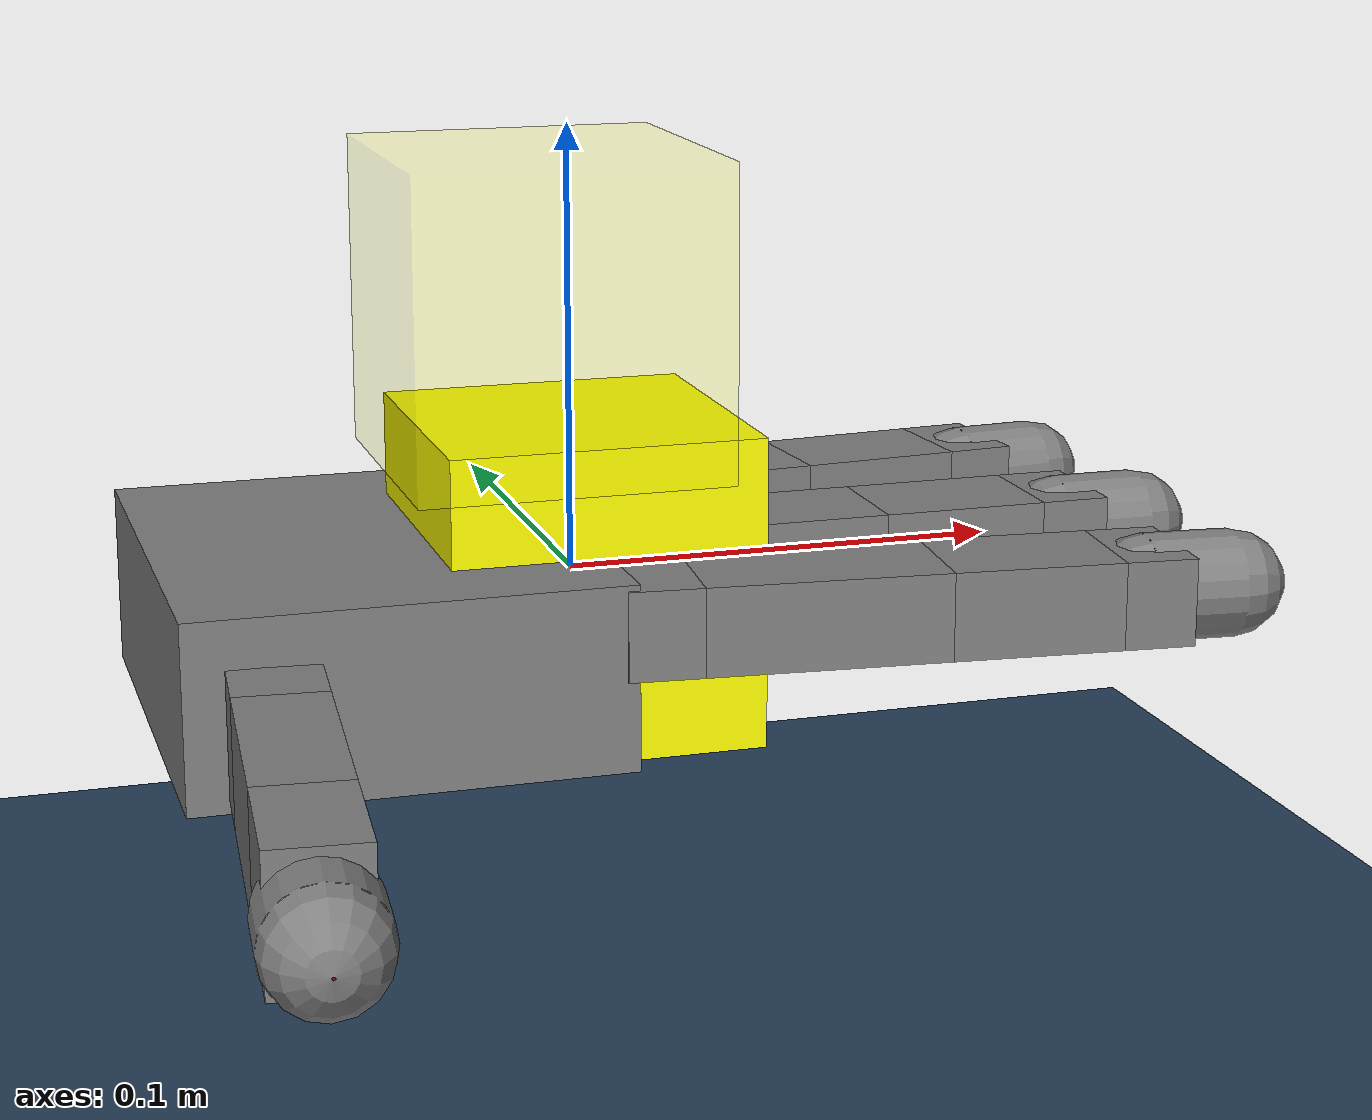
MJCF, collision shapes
<mujoco model="right_allegro_hand scene">
  <include file="allegro_right_hand.xml"/>

  <statistic center="0 0 0" extent="0.3"/>
  <option ccd_iterations="200" timestep="0.001" gravity="4.9 0 -8.49"/>

  <visual>
    <rgba haze="0.15 0.25 0.35 1"/>
    <quality shadowsize="8192"/>
    <global azimuth="130" elevation="-40" offwidth="1280" offheight="960"/>
  </visual>

  <asset>
    <texture name='cube_surface' file="./textures/iris_block.png" gridsize="3 4" gridlayout=".U..LFRB.D.."/>
    <material name="obj_material" texture="cube_surface" specular="5" shininess=".0"/>

    <texture type="2d" name="groundplane" builtin="checker" mark="edge" rgb1="0.2 0.3 0.4" rgb2="0.1 0.2 0.3"
      markrgb="0.8 0.8 0.8" width="300" height="300"/>
    <material name="groundplane" texture="groundplane" texuniform="true" texrepeat="5 5" reflectance="0."/>
  </asset>

  <worldbody>
    <light directional="true" ambient="0.2 0.2 0.2" diffuse="0.8 0.8 0.8"  castshadow="false" pos="0 1 4" dir="0 0 -1" name="light0"/>
    <camera name="demo-cam" pos="-0.003 -0.393 0.317" xyaxes="1.000 -0.000 0.000 0.000 0.462 0.887"/>

    <body name="floor" pos="0 0 0">
      <geom name="floor" pos="0 0 -0.1" size="0 0 0.05" type="plane" material="groundplane"/>
    </body>

    <body name="obj" >
        <freejoint name="obj_freejoint"/>
        <geom name="obj" type="box" material="obj_material" size="0.035 0.035 0.035" friction="0.5" rgba="1.0 1.0 0 0.99"
              />
    </body>

    <body name="obj_target_body" >
      <site name="obj_target" type="box" material="obj_material" size="0.035 0.035 0.035"
        rgba="1.0 1.0 0 0.1"
        pos="-0.007 -0.0007  0.06" euler="0 0 0" />
    </body>

  </worldbody>

  <keyframe>
    <key name="key0"
    time="0.0"
    qpos="0.400818 1.19604 1.45509 0.282386 0.0144588 0.111579 1.1115 0.141504 -0.417234 1.40333 1.01115 1.23236 1.0524 1.09343 0.82938 1.38507 0.0256903 -0.00135759 0.0532087 0.991338 0.0535053 -0.119768 0.00639758"
    qvel="-6.02316e-15 5.34431e-14 5.36391e-14 2.93078e-16 -5.68701e-17 -1.2994e-15 -3.5167e-14 -6.5917e-15 -1.17189e-14 4.75419e-14 5.29862e-14 5.21497e-14 -5.45178e-14 5.32238e-14 -2.68282e-14 5.08046e-14 1.65086e-16 -2.99353e-17 -6.35419e-16 -1.70562e-15 -4.00827e-15 3.50432e-17"
    ctrl="0.3854 1.19462 1.44538 0.280375 0 0.22841 1.15351 0.142 -0.3854 1.40231 1.00287 1.23055 1.0561 1.09704 0.81915 1.38042"
    />

    <key name="key1"
    ctrl="0.07 1.0 1.0 1.3 0 0.4 1.6 1.3 -0.12 1.0 1.1 1.45 1.1 1.57 1.1 1.09"
    />

    <key name="key2"
    ctrl="0.0 0.0 0.0 0.0 0.0 0.0 0.0 0.0 0.0 0.0 0.0 0.0 0.0 0.0 0.0 0.0"
    />
  </keyframe>

</mujoco>

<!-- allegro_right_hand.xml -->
<mujoco model="allegro_right">
  <compiler angle="radian" autolimits="true"/>

  <default>
    <default class="allegro_right">
      <joint axis="0 1 0" damping=".1"/>
      <position kp="0.1" kv="0.1"/>
      <geom density="800"/>

      <default class="visual">
        <geom type="mesh" contype="0" conaffinity="0" group="2" material="black"/>
        <default class="palm_visual">
          <geom mesh="base_link"/>
        </default>
        <default class="base_visual">
          <geom mesh="link_0.0"/>
        </default>
        <default class="proximal_visual">
          <geom mesh="link_1.0"/>
        </default>
        <default class="medial_visual">
          <geom mesh="link_2.0"/>
        </default>
        <default class="distal_visual">
          <geom mesh="link_3.0"/>
        </default>
        <default class="fingertip_visual">
          <geom pos="0 0 0.0267" material="white" mesh="link_3.0_tip"/>
        </default>
        <default class="thumbtip_visual">
          <geom pos="0 0 0.0423" material="white" mesh="link_15.0_tip"/>
        </default>
      </default>

      <default class="collision">
        <geom group="3" type="box" mass="0"/>
        <default class="palm_collision">
          <geom size="0.0204 0.0565 0.0475" pos="-0.0093 0 -0.0475"/>
        </default>
        <default class="base_collision">
          <geom size="0.0098 0.01375 0.0082" pos="0 0 0.0082"/>
          <default class="thumb_base_collision">
            <geom size="0.0179 0.017 0.02275" pos="-0.0179 0.009 0.0145"/>
          </default>
        </default>
        <default class="proximal_collision">
          <geom size="0.0098 0.01375 0.027" pos="0 0 0.027"/>
          <default class="thumb_proximal_collision">
            <geom size="0.0098 0.01375 0.00885" pos="0 0 0.00885"/>
          </default>
        </default>
        <default class="medial_collision">
          <geom size="0.0098 0.01375 0.0192" pos="0 0 0.0192"/>
          <default class="thumb_medial_collision">
            <geom size="0.0098 0.01375 0.0257" pos="0 0 0.0257"/>
          </default>
        </default>
        <default class="distal_collision">
          <geom size="0.0098 0.01375 0.008" pos="0 0 0.008"/>
          <default class="thumb_distal_collision">
            <geom size="0.0098 0.01375 0.0157" pos="0 0 0.0157"/>
          </default>
        </default>
        <default class="fingertip_collision">
          <geom type="capsule" size="0.012 0.01" pos="0 0 0.019"/>
          <default class="thumbtip_collision">
            <geom type="capsule" size="0.012 0.008" pos="0 0 0.035"/>
          </default>
        </default>
      </default>

      <default class="base">
        <joint axis="0 0 1" range="-0.47 0.47"/>
        <position ctrlrange="-0.47 0.47"/>
      </default>
      <default class="proximal">
        <joint range="-0.196 1.61"/>
        <position ctrlrange="-0.196 1.61"/>
      </default>
      <default class="medial">
        <joint range="-0.174 1.709"/>
        <position ctrlrange="-0.174 1.709"/>
      </default>
      <default class="distal">
        <joint range="-0.227 1.618"/>
        <position ctrlrange="-0.227 1.618"/>
      </default>
      <default class="thumb_base">
        <joint axis="-1 0 0" range="0.263 1.396"/>
        <position ctrlrange="0.263 1.396"/>
      </default>
      <default class="thumb_proximal">
        <joint axis="0 0 1" range="-0.105 2.163"/>
        <position ctrlrange="-0.105 2.163"/>
      </default>
      <default class="thumb_medial">
        <joint range="-0.189 1.644"/>
        <position ctrlrange="-0.189 1.644"/>
      </default>
      <default class="thumb_distal">
        <joint range="-0.162 1.719"/>
        <position ctrlrange="-0.162 1.719"/>
      </default>
    </default>
  </default>

  <asset>
    <material name="black" rgba="0.2 0.2 0.2 1"/>
    <material name="white" rgba="0.9 0.9 0.9 1"/>
    <mesh file="./hand/assets/base_link.stl" name="base_link"/>
    <mesh file="./hand/assets/link_0.0.stl" name="link_0.0"/>
    <mesh file="./hand/assets/link_1.0.stl" name="link_1.0"/>
    <mesh file="./hand/assets/link_2.0.stl" name="link_2.0"/>
    <mesh file="./hand/assets/link_3.0.stl" name="link_3.0"/>
    <mesh file="./hand/assets/link_3.0_tip.stl" name="link_3.0_tip"/>
    <mesh file="./hand/assets/link_12.0_right.stl" name="link_12.0_right"/>
    <mesh file="./hand/assets/link_13.0.stl" name="link_13.0"/>
    <mesh file="./hand/assets/link_14.0.stl" name="link_14.0"/>
    <mesh file="./hand/assets/link_15.0.stl" name="link_15.0"/>
    <mesh file="./hand/assets/link_15.0_tip.stl" name="link_15.0_tip"/>
  </asset>

  <worldbody>
    <body name="palm" quat="0 1 0 1" childclass="allegro_right">
      <geom class="palm_visual" mesh="base_link"/>
      <geom class="palm_collision" name="palm" friction="0.5"/>

      <!-- First finger -->
      <body name="ff_base" pos="0 0.0435 -0.001542" quat="0.999048 -0.0436194 0 0">
        <joint name="ffj0" class="base"/>
        <geom class="base_visual"/>
        <geom class="base_collision" name="ff_base"/>
        <body name="ff_proximal" pos="0 0 0.0164">
          <joint name="ffj1" class="proximal"/>
          <geom class="proximal_visual"/>
          <geom class="proximal_collision" name="ff_proximal"/>
          <body name="ff_medial" pos="0 0 0.054">
            <joint name="ffj2" class="medial"/>
            <geom class="medial_visual"/>
            <geom class="medial_collision" name="ff_medial"/>
            <body name="ff_distal" pos="0 0 0.0384">
              <joint name="ffj3" class="distal"/>
              <geom class="distal_visual"/>
              <geom class="distal_collision" name="ff_distal"/>
              <body name="ff_tip">
                <geom class="fingertip_visual"/>
                <geom class="fingertip_collision" name="fingertip0"/>
                <site rgba="0.5 0.0 0.0 1" size="0.001" pos="0 0 0.0384" name="ftp_0"/>
              </body>
            </body>
          </body>
        </body>
      </body>
      <!-- Middle finger -->
      <body name="mf_base" pos="0 0 0.0007">
        <joint name="mfj0" class="base"/>
        <geom class="base_visual"/>
        <geom class="base_collision" name="mf_base"/>
        <body name="mf_proximal" pos="0 0 0.0164">
          <joint name="mfj1" class="proximal"/>
          <geom class="proximal_visual"/>
          <geom class="proximal_collision" name="mf_proximal"/>
          <body name="mf_medial" pos="0 0 0.054">
            <joint name="mfj2" class="medial"/>
            <geom class="medial_visual"/>
            <geom class="medial_collision" name="mf_medial"/>
            <body name="mf_distal" pos="0 0 0.0384">
              <joint name="mfj3" class="distal"/>
              <geom class="distal_visual"/>
              <geom class="distal_collision" name="mf_distal"/>
              <body name="mf_tip">
                <geom class="fingertip_visual"/>
                <geom class="fingertip_collision" name="fingertip1"/>
                <site rgba="0.5 0.0 0.0 1" size="0.001" pos="0 0 0.0384" name="ftp_1"/>
              </body>
            </body>
          </body>
        </body>
      </body>
      <!-- Ring finger -->
      <body name="rf_base" pos="0 -0.0435 -0.001542" quat="0.999048 0.0436194 0 0">
        <joint name="rfj0" class="base"/>
        <geom class="base_visual"/>
        <geom class="base_collision" name="rf_base"/>
        <body name="rf_proximal" pos="0 0 0.0164">
          <joint name="rfj1" class="proximal"/>
          <geom class="proximal_visual"/>
          <geom class="proximal_collision" name="rf_proximal"/>
          <body name="rf_medial" pos="0 0 0.054">
            <joint name="rfj2" class="medial"/>
            <geom class="medial_visual"/>
            <geom class="medial_collision" name="rf_medial"/>
            <body name="rf_distal" pos="0 0 0.0384">
              <joint name="rfj3" class="distal"/>
              <geom class="distal_visual"/>
              <geom class="distal_collision" name="rf_distal"/>
              <body name="rf_tip">
                <geom class="fingertip_visual"/>
                <geom class="fingertip_collision" name="fingertip2"/>
                <site rgba="0.5 0.0 0.0 1" size="0.001" pos="0 0 0.0384" name="ftp_2"/>
              </body>
            </body>
          </body>
        </body>
      </body>
      <!-- Thumb -->
      <body name="th_base" pos="-0.0182 0.019333 -0.045987" quat="0.477714 -0.521334 -0.521334 -0.477714">
        <joint name="thj0" class="thumb_base"/>
        <geom class="visual" mesh="link_12.0_right"/>
        <geom class="thumb_base_collision" name="th_base"/>
        <body name="th_proximal" pos="-0.027 0.005 0.0399">
          <joint name="thj1" class="thumb_proximal"/>
          <geom class="visual" mesh="link_13.0"/>
          <geom class="thumb_proximal_collision" name="th_proximal"/>
          <body name="th_medial" pos="0 0 0.0177">
            <joint name="thj2" class="thumb_medial"/>
            <geom class="visual" mesh="link_14.0"/>
            <geom class="thumb_medial_collision" name="th_medial"/>
            <body name="th_distal" pos="0 0 0.0514">
              <joint name="thj3" class="thumb_distal"/>
              <geom class="visual" mesh="link_15.0"/>
              <geom class="thumb_distal_collision" name="th_distal"/>
              <body name="th_tip">
                <geom class="thumbtip_visual"/>
                <geom class="thumbtip_collision" name="fingertip3"/>
                <site rgba="0.5 0.0 0.0 1" size="0.001" pos="0 0 0.054" name="ftp_3"/>
              </body>
            </body>
          </body>
        </body>
      </body>
    </body>
  </worldbody>

  <contact>
    <exclude body1="palm" body2="ff_base"/>
    <exclude body1="palm" body2="mf_base"/>
    <exclude body1="palm" body2="rf_base"/>
    <exclude body1="palm" body2="th_base"/>
    <exclude body1="palm" body2="th_proximal"/>
  </contact>

  <actuator>
    <position name="ffa0" joint="ffj0" class="base" kp="1"/>
    <position name="ffa1" joint="ffj1" class="proximal" kp="1"/>
    <position name="ffa2" joint="ffj2" class="medial" kp="1"/>
    <position name="ffa3" joint="ffj3" class="distal" kp="1"/>
    <position name="mfa0" joint="mfj0" class="base" kp="1"/>
    <position name="mfa1" joint="mfj1" class="proximal" kp="1"/>
    <position name="mfa2" joint="mfj2" class="medial" kp="1"/>
    <position name="mfa3" joint="mfj3" class="distal" kp="1"/>
    <position name="rfa0" joint="rfj0" class="base" kp="1"/>
    <position name="rfa1" joint="rfj1" class="proximal" kp="1"/>
    <position name="rfa2" joint="rfj2" class="medial" kp="1"/>
    <position name="rfa3" joint="rfj3" class="distal" kp="1"/>
    <position name="tha0" joint="thj0" class="thumb_base" kp="1"/>
    <position name="tha1" joint="thj1" class="thumb_proximal" kp="1"/>
    <position name="tha2" joint="thj2" class="thumb_medial" kp="1"/>
    <position name="tha3" joint="thj3" class="thumb_distal" kp="1"/>
  </actuator>

</mujoco>
